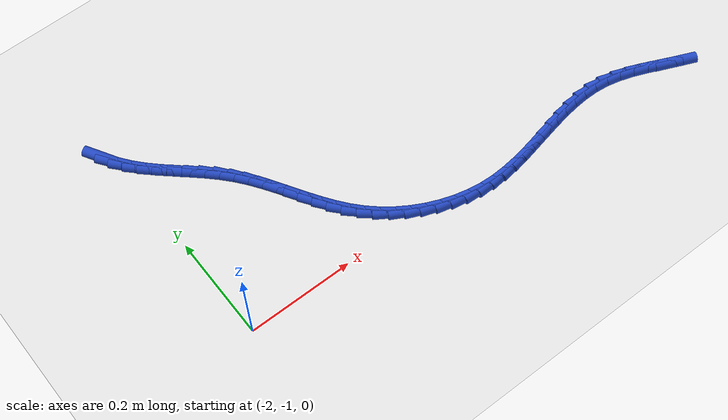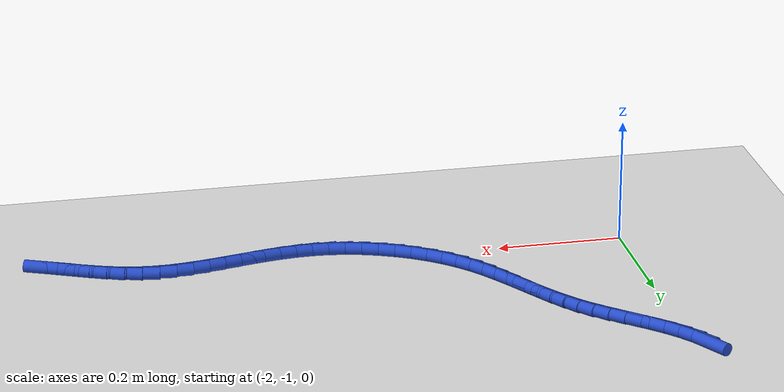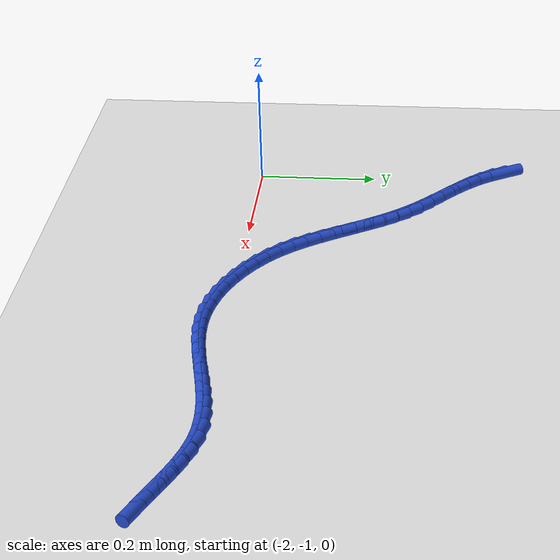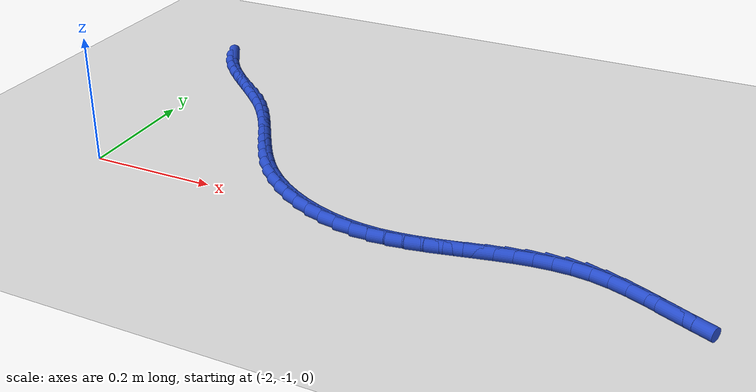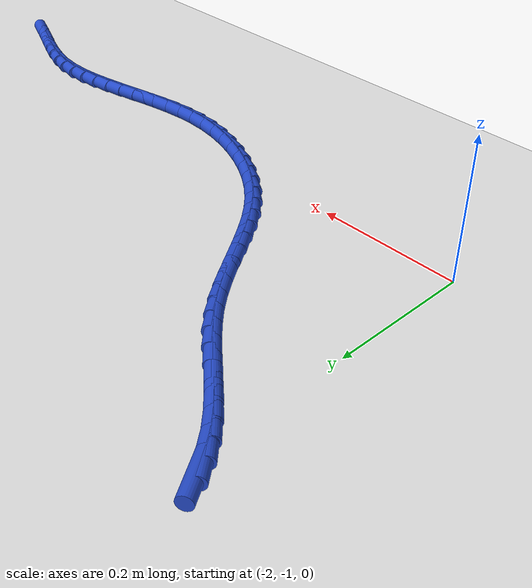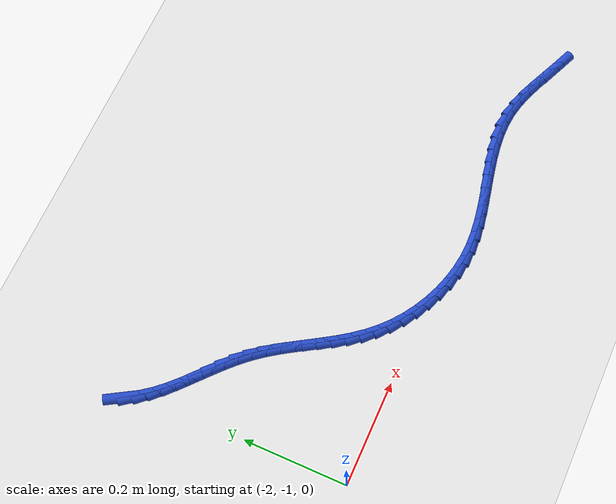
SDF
<sdf version="1.6">
 <world name="default">
  <model name="ground_plane">
   <static>1</static>
   <link name="link">
    <collision name="collision">
     <geometry><plane><normal>0 0 1</normal><size>100 100</size></plane></geometry>
     <surface><friction><ode><mu>100</mu><mu2>50</mu2></ode></friction></surface>
    </collision>
    <visual name="visual">
     <cast_shadows>0</cast_shadows>
     <geometry><plane><normal>0 0 1</normal><size>100 100</size></plane></geometry>
     <material>
      <script><uri>file://media/materials/scripts/gazebo.material</uri><name>Gazebo/WhiteGlow</name></script>
     </material>
    </visual>
   </link>
  </model>
  <model name="line">
   <link name="link_149">
    <pose>-2.0174477036473055 -0.5749220136909944 0.01 0 1.57 -1.039576312548704</pose>
    <collision name="collision">
     <geometry><cylinder><radius>0.01</radius><length>0.08</length></cylinder></geometry>
    </collision>
    <visual name="visual">
     <material>
      <script><name>Gazebo/Blue</name><uri>file://media/materials/scripts/gazebo.material</uri></script>
     </material>
     <geometry><cylinder><radius>0.01</radius><length>0.08</length></cylinder></geometry>
    </visual>
   </link>
   <link name="link_150">
    <pose>-2.0046445627964182 -0.5967124786355 0.01 0 1.57 -0.9290505189692521</pose>
    <collision name="collision">
     <geometry><cylinder><radius>0.01</radius><length>0.08</length></cylinder></geometry>
    </collision>
    <visual name="visual">
     <material>
      <script><name>Gazebo/Blue</name><uri>file://media/materials/scripts/gazebo.material</uri></script>
     </material>
     <geometry><cylinder><radius>0.01</radius><length>0.08</length></cylinder></geometry>
    </visual>
   </link>
   <link name="link_151">
    <pose>-1.9894081329783546 -0.6171021830799869 0.01 0 1.57 -0.8403043250596556</pose>
    <collision name="collision">
     <geometry><cylinder><radius>0.01</radius><length>0.08</length></cylinder></geometry>
    </collision>
    <visual name="visual">
     <material>
      <script><name>Gazebo/Blue</name><uri>file://media/materials/scripts/gazebo.material</uri></script>
     </material>
     <geometry><cylinder><radius>0.01</radius><length>0.08</length></cylinder></geometry>
    </visual>
   </link>
   <link name="link_152">
    <pose>-1.9721608524010672 -0.6363555928158962 0.01 0 1.57 -0.778815290295264</pose>
    <collision name="collision">
     <geometry><cylinder><radius>0.01</radius><length>0.08</length></cylinder></geometry>
    </collision>
    <visual name="visual">
     <material>
      <script><name>Gazebo/Blue</name><uri>file://media/materials/scripts/gazebo.material</uri></script>
     </material>
     <geometry><cylinder><radius>0.01</radius><length>0.08</length></cylinder></geometry>
    </visual>
   </link>
   <link name="link_153">
    <pose>-1.9534498180848912 -0.6548218899417364 0.01 0 1.57 -0.7429517708135479</pose>
    <collision name="collision">
     <geometry><cylinder><radius>0.01</radius><length>0.08</length></cylinder></geometry>
    </collision>
    <visual name="visual">
     <material>
      <script><name>Gazebo/Blue</name><uri>file://media/materials/scripts/gazebo.material</uri></script>
     </material>
     <geometry><cylinder><radius>0.01</radius><length>0.08</length></cylinder></geometry>
    </visual>
   </link>
   <link name="link_154">
    <pose>-1.9338221270501588 -0.6728502565560152 0.01 0 1.57 -0.7312129227282079</pose>
    <collision name="collision">
     <geometry><cylinder><radius>0.01</radius><length>0.08</length></cylinder></geometry>
    </collision>
    <visual name="visual">
     <material>
      <script><name>Gazebo/Blue</name><uri>file://media/materials/scripts/gazebo.material</uri></script>
     </material>
     <geometry><cylinder><radius>0.01</radius><length>0.08</length></cylinder></geometry>
    </visual>
   </link>
   <link name="link_155">
    <pose>-1.9138248763172048 -0.6907898747572405 0.01 0 1.57 -0.7428233924139713</pose>
    <collision name="collision">
     <geometry><cylinder><radius>0.01</radius><length>0.08</length></cylinder></geometry>
    </collision>
    <visual name="visual">
     <material>
      <script><name>Gazebo/Blue</name><uri>file://media/materials/scripts/gazebo.material</uri></script>
     </material>
     <geometry><cylinder><radius>0.01</radius><length>0.08</length></cylinder></geometry>
    </visual>
   </link>
   <link name="link_156">
    <pose>-1.8940051629063626 -0.7089899266439206 0.01 0 1.57 -0.7778686050028479</pose>
    <collision name="collision">
     <geometry><cylinder><radius>0.01</radius><length>0.08</length></cylinder></geometry>
    </collision>
    <visual name="visual">
     <material>
      <script><name>Gazebo/Blue</name><uri>file://media/materials/scripts/gazebo.material</uri></script>
     </material>
     <geometry><cylinder><radius>0.01</radius><length>0.08</length></cylinder></geometry>
    </visual>
   </link>
   <link name="link_157">
    <pose>-1.8749100838379678 -0.7277995943145625 0.01 0 1.57 -0.8370079845670888</pose>
    <collision name="collision">
     <geometry><cylinder><radius>0.01</radius><length>0.08</length></cylinder></geometry>
    </collision>
    <visual name="visual">
     <material>
      <script><name>Gazebo/Blue</name><uri>file://media/materials/scripts/gazebo.material</uri></script>
     </material>
     <geometry><cylinder><radius>0.01</radius><length>0.08</length></cylinder></geometry>
    </visual>
   </link>
   <link name="link_158">
    <pose>-1.8570848029649412 -0.7475667378953182 0.01 0 1.57 -0.9080318100277143</pose>
    <collision name="collision">
     <geometry><cylinder><radius>0.01</radius><length>0.08</length></cylinder></geometry>
    </collision>
    <visual name="visual">
     <material>
      <script><name>Gazebo/Blue</name><uri>file://media/materials/scripts/gazebo.material</uri></script>
     </material>
     <geometry><cylinder><radius>0.01</radius><length>0.08</length></cylinder></geometry>
    </visual>
   </link>
   <link name="link_159">
    <pose>-1.8407891199649242 -0.7684440747901204 0.01 0 1.57 -0.9640290661216959</pose>
    <collision name="collision">
     <geometry><cylinder><radius>0.01</radius><length>0.08</length></cylinder></geometry>
    </collision>
    <visual name="visual">
     <material>
      <script><name>Gazebo/Blue</name><uri>file://media/materials/scripts/gazebo.material</uri></script>
     </material>
     <geometry><cylinder><radius>0.01</radius><length>0.08</length></cylinder></geometry>
    </visual>
   </link>
   <link name="link_160">
    <pose>-1.8256985287588483 -0.7901847522190841 0.01 0 1.57 -1.0013477479391852</pose>
    <collision name="collision">
     <geometry><cylinder><radius>0.01</radius><length>0.08</length></cylinder></geometry>
    </collision>
    <visual name="visual">
     <material>
      <script><name>Gazebo/Blue</name><uri>file://media/materials/scripts/gazebo.material</uri></script>
     </material>
     <geometry><cylinder><radius>0.01</radius><length>0.08</length></cylinder></geometry>
    </visual>
   </link>
   <link name="link_161">
    <pose>-1.811416991580544 -0.8124930013527472 0.01 0 1.57 -1.020005753934682</pose>
    <collision name="collision">
     <geometry><cylinder><radius>0.01</radius><length>0.08</length></cylinder></geometry>
    </collision>
    <visual name="visual">
     <material>
      <script><name>Gazebo/Blue</name><uri>file://media/materials/scripts/gazebo.material</uri></script>
     </material>
     <geometry><cylinder><radius>0.01</radius><length>0.08</length></cylinder></geometry>
    </visual>
   </link>
   <link name="link_162">
    <pose>-1.7975484706638436 -0.8350730533616473 0.01 0 1.57 -1.0200784680257011</pose>
    <collision name="collision">
     <geometry><cylinder><radius>0.01</radius><length>0.08</length></cylinder></geometry>
    </collision>
    <visual name="visual">
     <material>
      <script><name>Gazebo/Blue</name><uri>file://media/materials/scripts/gazebo.material</uri></script>
     </material>
     <geometry><cylinder><radius>0.01</radius><length>0.08</length></cylinder></geometry>
    </visual>
   </link>
   <link name="link_163">
    <pose>-1.7836969282425792 -0.8576291394163232 0.01 0 1.57 -1.0015042919851473</pose>
    <collision name="collision">
     <geometry><cylinder><radius>0.01</radius><length>0.08</length></cylinder></geometry>
    </collision>
    <visual name="visual">
     <material>
      <script><name>Gazebo/Blue</name><uri>file://media/materials/scripts/gazebo.material</uri></script>
     </material>
     <geometry><cylinder><radius>0.01</radius><length>0.08</length></cylinder></geometry>
    </visual>
   </link>
   <link name="link_164">
    <pose>-1.7694663265505821 -0.8798654906873123 0.01 0 1.57 -0.9640826455140459</pose>
    <collision name="collision">
     <geometry><cylinder><radius>0.01</radius><length>0.08</length></cylinder></geometry>
    </collision>
    <visual name="visual">
     <material>
      <script><name>Gazebo/Blue</name><uri>file://media/materials/scripts/gazebo.material</uri></script>
     </material>
     <geometry><cylinder><radius>0.01</radius><length>0.08</length></cylinder></geometry>
    </visual>
   </link>
   <link name="link_165">
    <pose>-1.7544606278216837 -0.9014863383451537 0.01 0 1.57 -0.9076689645799024</pose>
    <collision name="collision">
     <geometry><cylinder><radius>0.01</radius><length>0.08</length></cylinder></geometry>
    </collision>
    <visual name="visual">
     <material>
      <script><name>Gazebo/Blue</name><uri>file://media/materials/scripts/gazebo.material</uri></script>
     </material>
     <geometry><cylinder><radius>0.01</radius><length>0.08</length></cylinder></geometry>
    </visual>
   </link>
   <link name="link_166">
    <pose>-1.7382837942897158 -0.9221959135603834 0.01 0 1.57 -0.8325767235816677</pose>
    <collision name="collision">
     <geometry><cylinder><radius>0.01</radius><length>0.08</length></cylinder></geometry>
    </collision>
    <visual name="visual">
     <material>
      <script><name>Gazebo/Blue</name><uri>file://media/materials/scripts/gazebo.material</uri></script>
     </material>
     <geometry><cylinder><radius>0.01</radius><length>0.08</length></cylinder></geometry>
    </visual>
   </link>
   <link name="link_167">
    <pose>-1.7205397998855434 -0.9416984506154111 0.01 0 1.57 -0.7440994734084305</pose>
    <collision name="collision">
     <geometry><cylinder><radius>0.01</radius><length>0.08</length></cylinder></geometry>
    </collision>
    <visual name="visual">
     <material>
      <script><name>Gazebo/Blue</name><uri>file://media/materials/scripts/gazebo.material</uri></script>
     </material>
     <geometry><cylinder><radius>0.01</radius><length>0.08</length></cylinder></geometry>
    </visual>
   </link>
   <link name="link_168">
    <pose>-1.700953452716811 -0.9597303304323495 0.01 0 1.57 -0.6567449077569812</pose>
    <collision name="collision">
     <geometry><cylinder><radius>0.01</radius><length>0.08</length></cylinder></geometry>
    </collision>
    <visual name="visual">
     <material>
      <script><name>Gazebo/Blue</name><uri>file://media/materials/scripts/gazebo.material</uri></script>
     </material>
     <geometry><cylinder><radius>0.01</radius><length>0.08</length></cylinder></geometry>
    </visual>
   </link>
   <link name="link_169">
    <pose>-1.6796680763987624 -0.9761392755056358 0.01 0 1.57 -0.5723469482684826</pose>
    <collision name="collision">
     <geometry><cylinder><radius>0.01</radius><length>0.08</length></cylinder></geometry>
    </collision>
    <visual name="visual">
     <material>
      <script><name>Gazebo/Blue</name><uri>file://media/materials/scripts/gazebo.material</uri></script>
     </material>
     <geometry><cylinder><radius>0.01</radius><length>0.08</length></cylinder></geometry>
    </visual>
   </link>
   <link name="link_170">
    <pose>-1.6569175415601938 -0.9907970973937346 0.01 0 1.57 -0.4895743284487192</pose>
    <collision name="collision">
     <geometry><cylinder><radius>0.01</radius><length>0.08</length></cylinder></geometry>
    </collision>
    <visual name="visual">
     <material>
      <script><name>Gazebo/Blue</name><uri>file://media/materials/scripts/gazebo.material</uri></script>
     </material>
     <geometry><cylinder><radius>0.01</radius><length>0.08</length></cylinder></geometry>
    </visual>
   </link>
   <link name="link_171">
    <pose>-1.6329357188299038 -1.00357560765511 0.01 0 1.57 -0.4071090749648769</pose>
    <collision name="collision">
     <geometry><cylinder><radius>0.01</radius><length>0.08</length></cylinder></geometry>
    </collision>
    <visual name="visual">
     <material>
      <script><name>Gazebo/Blue</name><uri>file://media/materials/scripts/gazebo.material</uri></script>
     </material>
     <geometry><cylinder><radius>0.01</radius><length>0.08</length></cylinder></geometry>
    </visual>
   </link>
   <link name="link_172">
    <pose>-1.6079564788366876 -1.0143466178482257 0.01 0 1.57 -0.3236509880048095</pose>
    <collision name="collision">
     <geometry><cylinder><radius>0.01</radius><length>0.08</length></cylinder></geometry>
    </collision>
    <visual name="visual">
     <material>
      <script><name>Gazebo/Blue</name><uri>file://media/materials/scripts/gazebo.material</uri></script>
     </material>
     <geometry><cylinder><radius>0.01</radius><length>0.08</length></cylinder></geometry>
    </visual>
   </link>
   <link name="link_173">
    <pose>-1.582213692209344 -1.0229819395315454 0.01 0 1.57 -0.23792087108687457</pose>
    <collision name="collision">
     <geometry><cylinder><radius>0.01</radius><length>0.08</length></cylinder></geometry>
    </collision>
    <visual name="visual">
     <material>
      <script><name>Gazebo/Blue</name><uri>file://media/materials/scripts/gazebo.material</uri></script>
     </material>
     <geometry><cylinder><radius>0.01</radius><length>0.08</length></cylinder></geometry>
    </visual>
   </link>
   <link name="link_174">
    <pose>-1.5559412295766688 -1.0293533842635332 0.01 0 1.57 -0.14867419850465025</pose>
    <collision name="collision">
     <geometry><cylinder><radius>0.01</radius><length>0.08</length></cylinder></geometry>
    </collision>
    <visual name="visual">
     <material>
      <script><name>Gazebo/Blue</name><uri>file://media/materials/scripts/gazebo.material</uri></script>
     </material>
     <geometry><cylinder><radius>0.01</radius><length>0.08</length></cylinder></geometry>
    </visual>
   </link>
   <link name="link_175">
    <pose>-1.52937296156746 -1.0333327636026537 0.01 0 1.57 -0.05489131326290008</pose>
    <collision name="collision">
     <geometry><cylinder><radius>0.01</radius><length>0.08</length></cylinder></geometry>
    </collision>
    <visual name="visual">
     <material>
      <script><name>Gazebo/Blue</name><uri>file://media/materials/scripts/gazebo.material</uri></script>
     </material>
     <geometry><cylinder><radius>0.01</radius><length>0.08</length></cylinder></geometry>
    </visual>
   </link>
   <link name="link_176">
    <pose>-1.5027411773097972 -1.0347960872025102 0.01 0 1.57 0.035285241850059545</pose>
    <collision name="collision">
     <geometry><cylinder><radius>0.01</radius><length>0.08</length></cylinder></geometry>
    </collision>
    <visual name="visual">
     <material>
      <script><name>Gazebo/Blue</name><uri>file://media/materials/scripts/gazebo.material</uri></script>
     </material>
     <geometry><cylinder><radius>0.01</radius><length>0.08</length></cylinder></geometry>
    </visual>
   </link>
   <link name="link_177">
    <pose>-1.4761879804391225 -1.0338587621917756 0.01 0 1.57 0.10757501202862887</pose>
    <collision name="collision">
     <geometry><cylinder><radius>0.01</radius><length>0.08</length></cylinder></geometry>
    </collision>
    <visual name="visual">
     <material>
      <script><name>Gazebo/Blue</name><uri>file://media/materials/scripts/gazebo.material</uri></script>
     </material>
     <geometry><cylinder><radius>0.01</radius><length>0.08</length></cylinder></geometry>
    </visual>
   </link>
   <link name="link_178">
    <pose>-1.4497183271102727 -1.0310002538154373 0.01 0 1.57 0.16038710112637972</pose>
    <collision name="collision">
     <geometry><cylinder><radius>0.01</radius><length>0.08</length></cylinder></geometry>
    </collision>
    <visual name="visual">
     <material>
      <script><name>Gazebo/Blue</name><uri>file://media/materials/scripts/gazebo.material</uri></script>
     </material>
     <geometry><cylinder><radius>0.01</radius><length>0.08</length></cylinder></geometry>
    </visual>
   </link>
   <link name="link_179">
    <pose>-1.4233256790992403 -1.0267305391579409 0.01 0 1.57 0.19397800239199098</pose>
    <collision name="collision">
     <geometry><cylinder><radius>0.01</radius><length>0.08</length></cylinder></geometry>
    </collision>
    <visual name="visual">
     <material>
      <script><name>Gazebo/Blue</name><uri>file://media/materials/scripts/gazebo.material</uri></script>
     </material>
     <geometry><cylinder><radius>0.01</radius><length>0.08</length></cylinder></geometry>
    </visual>
   </link>
   <link name="link_180">
    <pose>-1.397003498182016 -1.021559595303732 0.01 0 1.57 0.20874098879060193</pose>
    <collision name="collision">
     <geometry><cylinder><radius>0.01</radius><length>0.08</length></cylinder></geometry>
    </collision>
    <visual name="visual">
     <material>
      <script><name>Gazebo/Blue</name><uri>file://media/materials/scripts/gazebo.material</uri></script>
     </material>
     <geometry><cylinder><radius>0.01</radius><length>0.08</length></cylinder></geometry>
    </visual>
   </link>
   <link name="link_181">
    <pose>-1.3707452461345917 -1.0159973993372566 0.01 0 1.57 0.20484511147279555</pose>
    <collision name="collision">
     <geometry><cylinder><radius>0.01</radius><length>0.08</length></cylinder></geometry>
    </collision>
    <visual name="visual">
     <material>
      <script><name>Gazebo/Blue</name><uri>file://media/materials/scripts/gazebo.material</uri></script>
     </material>
     <geometry><cylinder><radius>0.01</radius><length>0.08</length></cylinder></geometry>
    </visual>
   </link>
   <link name="link_182">
    <pose>-1.344544384732961 -1.0105539283429614 0.01 0 1.57 0.18208183694224817</pose>
    <collision name="collision">
     <geometry><cylinder><radius>0.01</radius><length>0.08</length></cylinder></geometry>
    </collision>
    <visual name="visual">
     <material>
      <script><name>Gazebo/Blue</name><uri>file://media/materials/scripts/gazebo.material</uri></script>
     </material>
     <geometry><cylinder><radius>0.01</radius><length>0.08</length></cylinder></geometry>
    </visual>
   </link>
   <link name="link_183">
    <pose>-1.318394375753114 -1.0057391594052918 0.01 0 1.57 0.13989580041269478</pose>
    <collision name="collision">
     <geometry><cylinder><radius>0.01</radius><length>0.08</length></cylinder></geometry>
    </collision>
    <visual name="visual">
     <material>
      <script><name>Gazebo/Blue</name><uri>file://media/materials/scripts/gazebo.material</uri></script>
     </material>
     <geometry><cylinder><radius>0.01</radius><length>0.08</length></cylinder></geometry>
    </visual>
   </link>
   <link name="link_184">
    <pose>-1.2922886809710437 -1.002063069608694 0.01 0 1.57 0.07761879287583277</pose>
    <collision name="collision">
     <geometry><cylinder><radius>0.01</radius><length>0.08</length></cylinder></geometry>
    </collision>
    <visual name="visual">
     <material>
      <script><name>Gazebo/Blue</name><uri>file://media/materials/scripts/gazebo.material</uri></script>
     </material>
     <geometry><cylinder><radius>0.01</radius><length>0.08</length></cylinder></geometry>
    </visual>
   </link>
   <link name="link_185">
    <pose>-1.2662207621627415 -1.0000356360376137 0.01 0 1.57 -0.005038992033452095</pose>
    <collision name="collision">
     <geometry><cylinder><radius>0.01</radius><length>0.08</length></cylinder></geometry>
    </collision>
    <visual name="visual">
     <material>
      <script><name>Gazebo/Blue</name><uri>file://media/materials/scripts/gazebo.material</uri></script>
     </material>
     <geometry><cylinder><radius>0.01</radius><length>0.08</length></cylinder></geometry>
    </visual>
   </link>
   <link name="link_186">
    <pose>-1.2401840811041995 -1.0001668357764972 0.01 0 1.57 -0.10722260369990909</pose>
    <collision name="collision">
     <geometry><cylinder><radius>0.01</radius><length>0.08</length></cylinder></geometry>
    </collision>
    <visual name="visual">
     <material>
      <script><name>Gazebo/Blue</name><uri>file://media/materials/scripts/gazebo.material</uri></script>
     </material>
     <geometry><cylinder><radius>0.01</radius><length>0.08</length></cylinder></geometry>
    </visual>
   </link>
   <link name="link_187">
    <pose>-1.2141720995714091 -1.0029666459097903 0.01 0 1.57 -0.22207573942513095</pose>
    <collision name="collision">
     <geometry><cylinder><radius>0.01</radius><length>0.08</length></cylinder></geometry>
    </collision>
    <visual name="visual">
     <material>
      <script><name>Gazebo/Blue</name><uri>file://media/materials/scripts/gazebo.material</uri></script>
     </material>
     <geometry><cylinder><radius>0.01</radius><length>0.08</length></cylinder></geometry>
    </visual>
   </link>
   <link name="link_188">
    <pose>-1.1881834319072138 -1.0088348864167156 0.01 0 1.57 -0.3168537799103497</pose>
    <collision name="collision">
     <geometry><cylinder><radius>0.01</radius><length>0.08</length></cylinder></geometry>
    </collision>
    <visual name="visual">
     <material>
      <script><name>Gazebo/Blue</name><uri>file://media/materials/scripts/gazebo.material</uri></script>
     </material>
     <geometry><cylinder><radius>0.01</radius><length>0.08</length></cylinder></geometry>
    </visual>
   </link>
   <link name="link_189">
    <pose>-1.162255738420049 -1.017336610709902 0.01 0 1.57 -0.3802864801452128</pose>
    <collision name="collision">
     <geometry><cylinder><radius>0.01</radius><length>0.08</length></cylinder></geometry>
    </collision>
    <visual name="visual">
     <material>
      <script><name>Gazebo/Blue</name><uri>file://media/materials/scripts/gazebo.material</uri></script>
     </material>
     <geometry><cylinder><radius>0.01</radius><length>0.08</length></cylinder></geometry>
    </visual>
   </link>
   <link name="link_190">
    <pose>-1.136444564919334 -1.0276544967625703 0.01 0 1.57 -0.4156033732669464</pose>
    <collision name="collision">
     <geometry><cylinder><radius>0.01</radius><length>0.08</length></cylinder></geometry>
    </collision>
    <visual name="visual">
     <material>
      <script><name>Gazebo/Blue</name><uri>file://media/materials/scripts/gazebo.material</uri></script>
     </material>
     <geometry><cylinder><radius>0.01</radius><length>0.08</length></cylinder></geometry>
    </visual>
   </link>
   <link name="link_191">
    <pose>-1.1108055501667242 -1.0389692353152626 0.01 0 1.57 -0.42472537256256987</pose>
    <collision name="collision">
     <geometry><cylinder><radius>0.01</radius><length>0.08</length></cylinder></geometry>
    </collision>
    <visual name="visual">
     <material>
      <script><name>Gazebo/Blue</name><uri>file://media/materials/scripts/gazebo.material</uri></script>
     </material>
     <geometry><cylinder><radius>0.01</radius><length>0.08</length></cylinder></geometry>
    </visual>
   </link>
   <link name="link_192">
    <pose>-1.0853943329238753 -1.050461517108522 0.01 0 1.57 -0.4076275837814012</pose>
    <collision name="collision">
     <geometry><cylinder><radius>0.01</radius><length>0.08</length></cylinder></geometry>
    </collision>
    <visual name="visual">
     <material>
      <script><name>Gazebo/Blue</name><uri>file://media/materials/scripts/gazebo.material</uri></script>
     </material>
     <geometry><cylinder><radius>0.01</radius><length>0.08</length></cylinder></geometry>
    </visual>
   </link>
  </model>
 </world>
</sdf>
